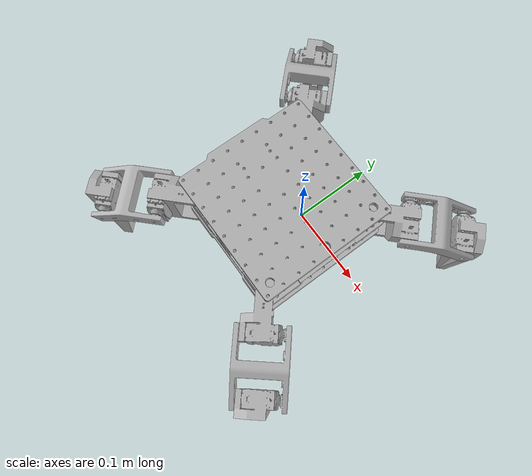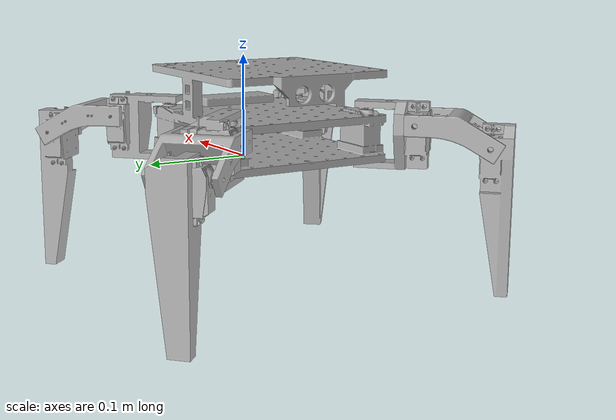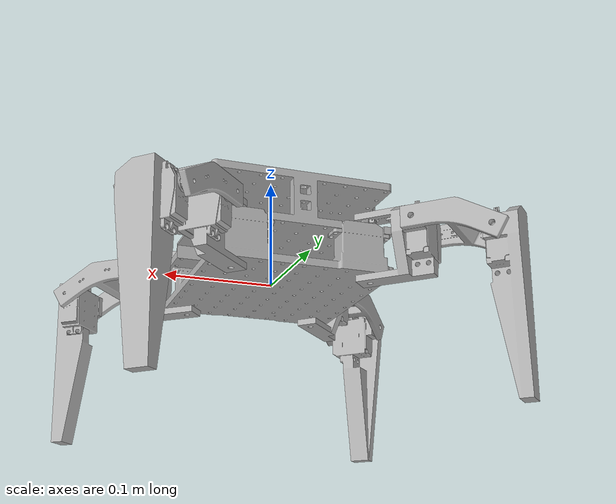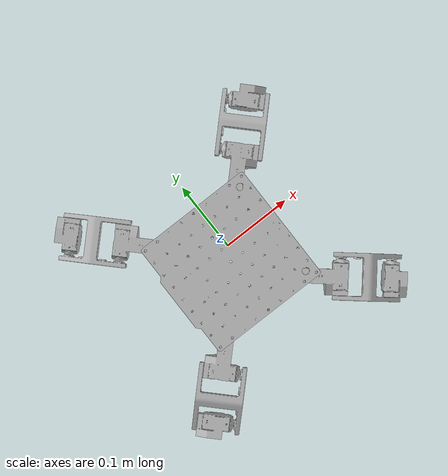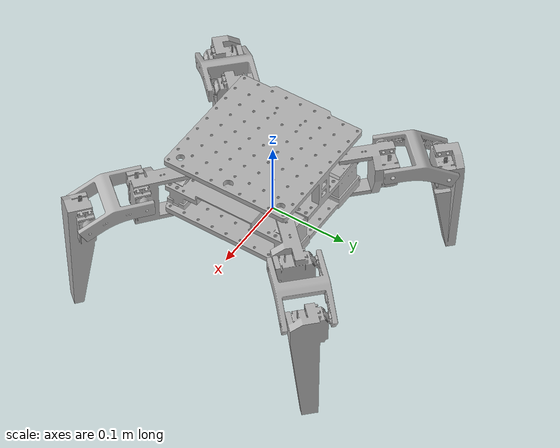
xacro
<?xml version="1.0" ?>
<robot name="Spiderbot_Without_Nav" xmlns:xacro="http://www.ros.org/wiki/xacro">

<xacro:include filename="$(find Spiderbot_Without_Nav_description)/urdf/materials.xacro" />
<xacro:include filename="$(find Spiderbot_Without_Nav_description)/urdf/Spiderbot_Without_Nav.ros2control" />
<xacro:include filename="$(find Spiderbot_Without_Nav_description)/urdf/Spiderbot_Without_Nav.gazebo" />
<link name="base_link">
  <inertial>
    <origin xyz="-0.011925620355711661 -0.02000971914367141 0.04046982489662282" rpy="0 0 0"/>
    <mass value="5.61497500362243"/>
    <inertia ixx="0.022367" iyy="0.019566" izz="0.030764" ixy="-5e-06" iyz="3e-06" ixz="0.000195"/>
  </inertial>
  <visual>
    <origin xyz="0 0 0" rpy="0 0 0"/>
    <geometry>
      <mesh filename="file://$(find Spiderbot_Without_Nav_description)/meshes/base_link.stl" scale="0.001 0.001 0.001"/>
    </geometry>
    <material name="silver"/>
  </visual>
  <collision>
    <origin xyz="0 0 0" rpy="0 0 0"/>
    <geometry>
      <mesh filename="file://$(find Spiderbot_Without_Nav_description)/meshes/base_link.stl" scale="0.001 0.001 0.001"/>
    </geometry>
  </collision>
</link>

<link name="coxa_FR_1">
  <inertial>
    <origin xyz="-0.028011122462089505 0.029189467664063135 -0.025161452378790722" rpy="0 0 0"/>
    <mass value="0.5326447248518721"/>
    <inertia ixx="0.00026" iyy="0.000276" izz="0.000188" ixy="2.9e-05" iyz="-1e-05" ixz="-2e-06"/>
  </inertial>
  <visual>
    <origin xyz="0.0749 -0.0542 -0.0528" rpy="0 0 0"/>
    <geometry>
      <mesh filename="file://$(find Spiderbot_Without_Nav_description)/meshes/coxa_FR_1.stl" scale="0.001 0.001 0.001"/>
    </geometry>
    <material name="silver"/>
  </visual>
  <collision>
    <origin xyz="0.0749 -0.0542 -0.0528" rpy="0 0 0"/>
    <geometry>
      <mesh filename="file://$(find Spiderbot_Without_Nav_description)/meshes/coxa_FR_1.stl" scale="0.001 0.001 0.001"/>
    </geometry>
  </collision>
</link>

<link name="femur_FR_1">
  <inertial>
    <origin xyz="-0.00655881868537006 0.04487966340235425 -0.0035371973943162036" rpy="0 0 0"/>
    <mass value="0.3037238401732045"/>
    <inertia ixx="0.000169" iyy="0.000169" izz="0.000293" ixy="-3.2e-05" iyz="1.9e-05" ixz="-1.9e-05"/>
  </inertial>
  <visual>
    <origin xyz="0.130196 -0.070181 -0.0387" rpy="0 0 0"/>
    <geometry>
      <mesh filename="file://$(find Spiderbot_Without_Nav_description)/meshes/femur_FR_1.stl" scale="0.001 0.001 0.001"/>
    </geometry>
    <material name="silver"/>
  </visual>
  <collision>
    <origin xyz="0.130196 -0.070181 -0.0387" rpy="0 0 0"/>
    <geometry>
      <mesh filename="file://$(find Spiderbot_Without_Nav_description)/meshes/femur_FR_1.stl" scale="0.001 0.001 0.001"/>
    </geometry>
  </collision>
</link>

<link name="tibia_FR_1">
  <inertial>
    <origin xyz="0.015552752309943574 0.02595204711365287 -0.044350338202795644" rpy="0 0 0"/>
    <mass value="0.856718844269578"/>
    <inertia ixx="0.001697" iyy="0.001665" izz="0.000146" ixy="-1.3e-05" iyz="6.5e-05" ixz="-7.6e-05"/>
  </inertial>
  <visual>
    <origin xyz="0.179439 -0.119425 -0.02004" rpy="0 0 0"/>
    <geometry>
      <mesh filename="file://$(find Spiderbot_Without_Nav_description)/meshes/tibia_FR_1.stl" scale="0.001 0.001 0.001"/>
    </geometry>
    <material name="silver"/>
  </visual>
  <collision>
    <origin xyz="0.179439 -0.119425 -0.02004" rpy="0 0 0"/>
    <geometry>
      <mesh filename="file://$(find Spiderbot_Without_Nav_description)/meshes/tibia_FR_1.stl" scale="0.001 0.001 0.001"/>
    </geometry>
  </collision>
</link>

<link name="coxa_BR_1">
  <inertial>
    <origin xyz="0.029189002811872346 0.028011587314280342 -0.025161452378790746" rpy="0 0 0"/>
    <mass value="0.5326447248518721"/>
    <inertia ixx="0.000276" iyy="0.00026" izz="0.000188" ixy="-2.9e-05" iyz="2e-06" ixz="-1e-05"/>
  </inertial>
  <visual>
    <origin xyz="-0.0549 -0.0542 -0.0528" rpy="0 0 0"/>
    <geometry>
      <mesh filename="file://$(find Spiderbot_Without_Nav_description)/meshes/coxa_BR_1.stl" scale="0.001 0.001 0.001"/>
    </geometry>
    <material name="silver"/>
  </visual>
  <collision>
    <origin xyz="-0.0549 -0.0542 -0.0528" rpy="0 0 0"/>
    <geometry>
      <mesh filename="file://$(find Spiderbot_Without_Nav_description)/meshes/coxa_BR_1.stl" scale="0.001 0.001 0.001"/>
    </geometry>
  </collision>
</link>

<link name="femur_BR_1">
  <inertial>
    <origin xyz="0.04487919855016352 0.006559283537561092 -0.003537197394316252" rpy="0 0 0"/>
    <mass value="0.3037238401732045"/>
    <inertia ixx="0.000169" iyy="0.000169" izz="0.000293" ixy="3.2e-05" iyz="1.9e-05" ixz="1.9e-05"/>
  </inertial>
  <visual>
    <origin xyz="-0.070881 -0.109496 -0.0387" rpy="0 0 0"/>
    <geometry>
      <mesh filename="file://$(find Spiderbot_Without_Nav_description)/meshes/femur_BR_1.stl" scale="0.001 0.001 0.001"/>
    </geometry>
    <material name="silver"/>
  </visual>
  <collision>
    <origin xyz="-0.070881 -0.109496 -0.0387" rpy="0 0 0"/>
    <geometry>
      <mesh filename="file://$(find Spiderbot_Without_Nav_description)/meshes/femur_BR_1.stl" scale="0.001 0.001 0.001"/>
    </geometry>
  </collision>
</link>

<link name="tibia_BR_1">
  <inertial>
    <origin xyz="0.025952582261462312 -0.01555328745775239 -0.0443503382027957" rpy="0 0 0"/>
    <mass value="0.856718844269578"/>
    <inertia ixx="0.001665" iyy="0.001697" izz="0.000146" ixy="1.3e-05" iyz="7.6e-05" ixz="6.5e-05"/>
  </inertial>
  <visual>
    <origin xyz="-0.120124 -0.15874 -0.02004" rpy="0 0 0"/>
    <geometry>
      <mesh filename="file://$(find Spiderbot_Without_Nav_description)/meshes/tibia_BR_1.stl" scale="0.001 0.001 0.001"/>
    </geometry>
    <material name="silver"/>
  </visual>
  <collision>
    <origin xyz="-0.120124 -0.15874 -0.02004" rpy="0 0 0"/>
    <geometry>
      <mesh filename="file://$(find Spiderbot_Without_Nav_description)/meshes/tibia_BR_1.stl" scale="0.001 0.001 0.001"/>
    </geometry>
  </collision>
</link>

<link name="coxa_FL_1">
  <inertial>
    <origin xyz="-0.029189002811872186 -0.028011587314280245 -0.02516145237879074" rpy="0 0 0"/>
    <mass value="0.5326447248518721"/>
    <inertia ixx="0.000276" iyy="0.00026" izz="0.000188" ixy="-2.9e-05" iyz="-2e-06" ixz="1e-05"/>
  </inertial>
  <visual>
    <origin xyz="0.0749 0.0942 -0.0528" rpy="0 0 0"/>
    <geometry>
      <mesh filename="file://$(find Spiderbot_Without_Nav_description)/meshes/coxa_FL_1.stl" scale="0.001 0.001 0.001"/>
    </geometry>
    <material name="silver"/>
  </visual>
  <collision>
    <origin xyz="0.0749 0.0942 -0.0528" rpy="0 0 0"/>
    <geometry>
      <mesh filename="file://$(find Spiderbot_Without_Nav_description)/meshes/coxa_FL_1.stl" scale="0.001 0.001 0.001"/>
    </geometry>
  </collision>
</link>

<link name="femur_FL_1">
  <inertial>
    <origin xyz="-0.04487919855016327 -0.006559283537560995 -0.003537197394316266" rpy="0 0 0"/>
    <mass value="0.3037238401732045"/>
    <inertia ixx="0.000169" iyy="0.000169" izz="0.000293" ixy="3.2e-05" iyz="-1.9e-05" ixz="-1.9e-05"/>
  </inertial>
  <visual>
    <origin xyz="0.090881 0.149496 -0.0387" rpy="0 0 0"/>
    <geometry>
      <mesh filename="file://$(find Spiderbot_Without_Nav_description)/meshes/femur_FL_1.stl" scale="0.001 0.001 0.001"/>
    </geometry>
    <material name="silver"/>
  </visual>
  <collision>
    <origin xyz="0.090881 0.149496 -0.0387" rpy="0 0 0"/>
    <geometry>
      <mesh filename="file://$(find Spiderbot_Without_Nav_description)/meshes/femur_FL_1.stl" scale="0.001 0.001 0.001"/>
    </geometry>
  </collision>
</link>

<link name="tibia_FL_1">
  <inertial>
    <origin xyz="-0.025952582261461965 0.015553287457752585 -0.044350338202795714" rpy="0 0 0"/>
    <mass value="0.856718844269578"/>
    <inertia ixx="0.001665" iyy="0.001697" izz="0.000146" ixy="1.3e-05" iyz="-7.6e-05" ixz="-6.5e-05"/>
  </inertial>
  <visual>
    <origin xyz="0.140124 0.19874 -0.02004" rpy="0 0 0"/>
    <geometry>
      <mesh filename="file://$(find Spiderbot_Without_Nav_description)/meshes/tibia_FL_1.stl" scale="0.001 0.001 0.001"/>
    </geometry>
    <material name="silver"/>
  </visual>
  <collision>
    <origin xyz="0.140124 0.19874 -0.02004" rpy="0 0 0"/>
    <geometry>
      <mesh filename="file://$(find Spiderbot_Without_Nav_description)/meshes/tibia_FL_1.stl" scale="0.001 0.001 0.001"/>
    </geometry>
  </collision>
</link>

<link name="coxa_BL_1">
  <inertial>
    <origin xyz="0.030448520904464295 -0.026637064512583963 -0.025161452378790732" rpy="0 0 0"/>
    <mass value="0.5326447248518721"/>
    <inertia ixx="0.000255" iyy="0.000281" izz="0.000188" ixy="2.7e-05" iyz="1e-05" ixz="1e-06"/>
  </inertial>
  <visual>
    <origin xyz="-0.0549 0.0942 -0.0528" rpy="0 0 0"/>
    <geometry>
      <mesh filename="file://$(find Spiderbot_Without_Nav_description)/meshes/coxa_BL_1.stl" scale="0.001 0.001 0.001"/>
    </geometry>
    <material name="silver"/>
  </visual>
  <collision>
    <origin xyz="-0.0549 0.0942 -0.0528" rpy="0 0 0"/>
    <geometry>
      <mesh filename="file://$(find Spiderbot_Without_Nav_description)/meshes/coxa_BL_1.stl" scale="0.001 0.001 0.001"/>
    </geometry>
  </collision>
</link>

<link name="femur_BL_1">
  <inertial>
    <origin xyz="0.010445758234201144 -0.044137069307629256 -0.003537197394316252" rpy="0 0 0"/>
    <mass value="0.3037238401732045"/>
    <inertia ixx="0.000174" iyy="0.000163" izz="0.000293" ixy="-3.2e-05" iyz="-1.7e-05" ixz="2e-05"/>
  </inertial>
  <visual>
    <origin xyz="-0.111378 0.105301 -0.0387" rpy="0 0 0"/>
    <geometry>
      <mesh filename="file://$(find Spiderbot_Without_Nav_description)/meshes/femur_BL_1.stl" scale="0.001 0.001 0.001"/>
    </geometry>
    <material name="silver"/>
  </visual>
  <collision>
    <origin xyz="-0.111378 0.105301 -0.0387" rpy="0 0 0"/>
    <geometry>
      <mesh filename="file://$(find Spiderbot_Without_Nav_description)/meshes/femur_BL_1.stl" scale="0.001 0.001 0.001"/>
    </geometry>
  </collision>
</link>

<link name="tibia_BL_1">
  <inertial>
    <origin xyz="-0.013231809099896297 -0.02720943017943117 -0.044350338202795686" rpy="0 0 0"/>
    <mass value="0.856718844269578"/>
    <inertia ixx="0.001699" iyy="0.001663" izz="0.000146" ixy="-1e-05" iyz="-5.8e-05" ixz="8.1e-05"/>
  </inertial>
  <visual>
    <origin xyz="-0.164726 0.150065 -0.02004" rpy="0 0 0"/>
    <geometry>
      <mesh filename="file://$(find Spiderbot_Without_Nav_description)/meshes/tibia_BL_1.stl" scale="0.001 0.001 0.001"/>
    </geometry>
    <material name="silver"/>
  </visual>
  <collision>
    <origin xyz="-0.164726 0.150065 -0.02004" rpy="0 0 0"/>
    <geometry>
      <mesh filename="file://$(find Spiderbot_Without_Nav_description)/meshes/tibia_BL_1.stl" scale="0.001 0.001 0.001"/>
    </geometry>
  </collision>
</link>

<joint name="J_Coxa_FR" type="revolute">
  <origin xyz="-0.0749 0.0542 0.0528" rpy="0 0 0"/>
  <parent link="base_link"/>
  <child link="coxa_FR_1"/>
  <axis xyz="0.0 0.0 1.0"/>
  <limit upper="1.308997" lower="-1.308997" effort="100" velocity="100"/>
</joint>

<joint name="J_Femur_FR" type="revolute">
  <origin xyz="-0.055296 0.015981 -0.0141" rpy="0 0 0"/>
  <parent link="coxa_FR_1"/>
  <child link="femur_FR_1"/>
  <axis xyz="-0.707107 -0.707107 0.0"/>
  <limit upper="0.785398" lower="-1.570796" effort="100" velocity="100"/>
</joint>

<joint name="J_Tibia_FR" type="revolute">
  <origin xyz="-0.049243 0.049244 -0.01866" rpy="0 0 0"/>
  <parent link="femur_FR_1"/>
  <child link="tibia_FR_1"/>
  <axis xyz="0.707107 0.707107 0.0"/>
  <limit upper="1.570796" lower="-1.308997" effort="100" velocity="100"/>
</joint>

<joint name="J_Coxa_BR" type="revolute">
  <origin xyz="0.0549 0.0542 0.0528" rpy="0 0 0"/>
  <parent link="base_link"/>
  <child link="coxa_BR_1"/>
  <axis xyz="0.0 0.0 1.0"/>
  <limit upper="1.308997" lower="-1.308997" effort="100" velocity="100"/>
</joint>

<joint name="J_Femur_BR" type="revolute">
  <origin xyz="0.015981 0.055296 -0.0141" rpy="0 0 0"/>
  <parent link="coxa_BR_1"/>
  <child link="femur_BR_1"/>
  <axis xyz="-0.707107 0.707107 -0.0"/>
  <limit upper="0.785398" lower="-1.570796" effort="100" velocity="100"/>
</joint>

<joint name="J_Tibia_BR" type="revolute">
  <origin xyz="0.049243 0.049244 -0.01866" rpy="0 0 0"/>
  <parent link="femur_BR_1"/>
  <child link="tibia_BR_1"/>
  <axis xyz="0.707107 -0.707107 0.0"/>
  <limit upper="1.570796" lower="-1.308997" effort="100" velocity="100"/>
</joint>

<joint name="J_Coxa_FL" type="revolute">
  <origin xyz="-0.0749 -0.0942 0.0528" rpy="0 0 0"/>
  <parent link="base_link"/>
  <child link="coxa_FL_1"/>
  <axis xyz="0.0 0.0 1.0"/>
  <limit upper="1.570796" lower="-1.047198" effort="100" velocity="100"/>
</joint>

<joint name="J_Femur_FL" type="revolute">
  <origin xyz="-0.015981 -0.055296 -0.0141" rpy="0 0 0"/>
  <parent link="coxa_FL_1"/>
  <child link="femur_FL_1"/>
  <axis xyz="0.707107 -0.707107 -0.0"/>
  <limit upper="0.785398" lower="-1.570796" effort="100" velocity="100"/>
</joint>

<joint name="J_Tibia_FL" type="revolute">
  <origin xyz="-0.049243 -0.049244 -0.01866" rpy="0 0 0"/>
  <parent link="femur_FL_1"/>
  <child link="tibia_FL_1"/>
  <axis xyz="-0.707107 0.707107 0.0"/>
  <limit upper="1.570796" lower="-1.308997" effort="100" velocity="100"/>
</joint>

<joint name="J_Coxa_BL" type="revolute">
  <origin xyz="0.0549 -0.0942 0.0528" rpy="0 0 0"/>
  <parent link="base_link"/>
  <child link="coxa_BL_1"/>
  <axis xyz="0.0 0.0 1.0"/>
  <limit upper="1.22173" lower="-1.396263" effort="100" velocity="100"/>
</joint>

<joint name="J_Femur_BL" type="revolute">
  <origin xyz="0.056478 -0.011101 -0.0141" rpy="0 0 0"/>
  <parent link="coxa_BL_1"/>
  <child link="femur_BL_1"/>
  <axis xyz="0.642788 0.766044 -0.0"/>
  <limit upper="0.785398" lower="-1.570796" effort="100" velocity="100"/>
</joint>

<joint name="J_Tibia_BL" type="revolute">
  <origin xyz="0.053348 -0.044764 -0.01866" rpy="0 0 0"/>
  <parent link="femur_BL_1"/>
  <child link="tibia_BL_1"/>
  <axis xyz="-0.642788 -0.766044 0.0"/>
  <limit upper="1.570796" lower="-1.308997" effort="100" velocity="100"/>
</joint>

</robot>

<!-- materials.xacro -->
<robot name="Spiderbot_Without_Nav" xmlns:xacro="http://www.ros.org/wiki/xacro" >

<material name="silver">
  <color rgba="0.700 0.700 0.700 1.000"/>
</material>

</robot>

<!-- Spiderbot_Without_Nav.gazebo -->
<robot name="Spiderbot_Without_Nav" xmlns:xacro="http://www.ros.org/wiki/xacro" >

<xacro:property name="body_color" value="Gazebo/Silver" />

<gazebo reference="base_link">
  <material>${body_color}</material>
  <mu1>0.2</mu1>
  <mu2>0.2</mu2>
  <self_collide>true</self_collide>
  <gravity>true</gravity>
</gazebo>

<gazebo reference="coxa_FR_1">
  <material>${body_color}</material>
  <mu1>0.2</mu1>
  <mu2>0.2</mu2>
  <self_collide>true</self_collide>
</gazebo>

<gazebo reference="femur_FR_1">
  <material>${body_color}</material>
  <mu1>0.2</mu1>
  <mu2>0.2</mu2>
  <self_collide>true</self_collide>
</gazebo>

<gazebo reference="tibia_FR_1">
  <material>${body_color}</material>
  <mu1>0.2</mu1>
  <mu2>0.2</mu2>
  <self_collide>true</self_collide>
</gazebo>

<gazebo reference="coxa_BR_1">
  <material>${body_color}</material>
  <mu1>0.2</mu1>
  <mu2>0.2</mu2>
  <self_collide>true</self_collide>
</gazebo>

<gazebo reference="femur_BR_1">
  <material>${body_color}</material>
  <mu1>0.2</mu1>
  <mu2>0.2</mu2>
  <self_collide>true</self_collide>
</gazebo>

<gazebo reference="tibia_BR_1">
  <material>${body_color}</material>
  <mu1>0.2</mu1>
  <mu2>0.2</mu2>
  <self_collide>true</self_collide>
</gazebo>

<gazebo reference="coxa_FL_1">
  <material>${body_color}</material>
  <mu1>0.2</mu1>
  <mu2>0.2</mu2>
  <self_collide>true</self_collide>
</gazebo>

<gazebo reference="femur_FL_1">
  <material>${body_color}</material>
  <mu1>0.2</mu1>
  <mu2>0.2</mu2>
  <self_collide>true</self_collide>
</gazebo>

<gazebo reference="tibia_FL_1">
  <material>${body_color}</material>
  <mu1>0.2</mu1>
  <mu2>0.2</mu2>
  <self_collide>true</self_collide>
</gazebo>

<gazebo reference="coxa_BL_1">
  <material>${body_color}</material>
  <mu1>0.2</mu1>
  <mu2>0.2</mu2>
  <self_collide>true</self_collide>
</gazebo>

<gazebo reference="femur_BL_1">
  <material>${body_color}</material>
  <mu1>0.2</mu1>
  <mu2>0.2</mu2>
  <self_collide>true</self_collide>
</gazebo>

<gazebo reference="tibia_BL_1">
  <material>${body_color}</material>
  <mu1>0.2</mu1>
  <mu2>0.2</mu2>
  <self_collide>true</self_collide>
</gazebo>

</robot>
